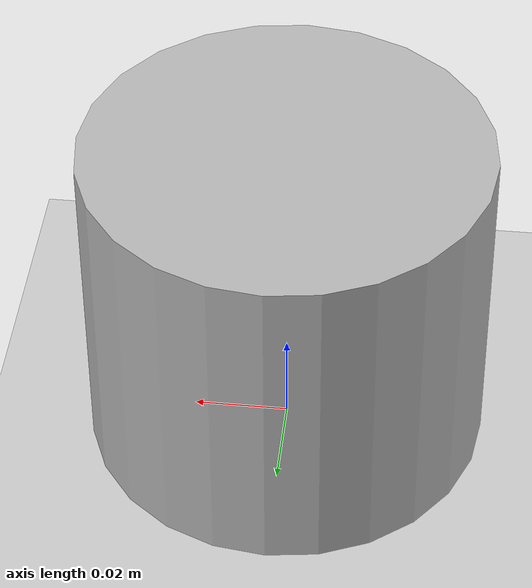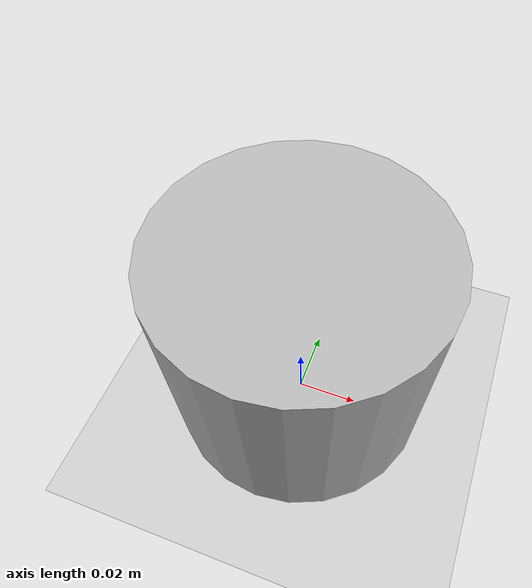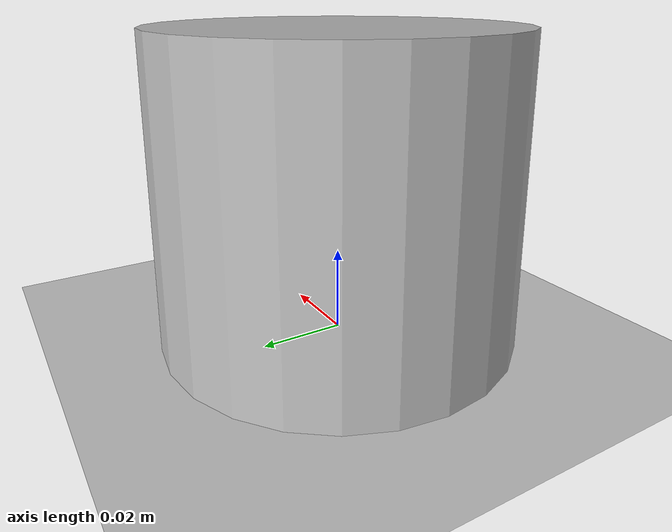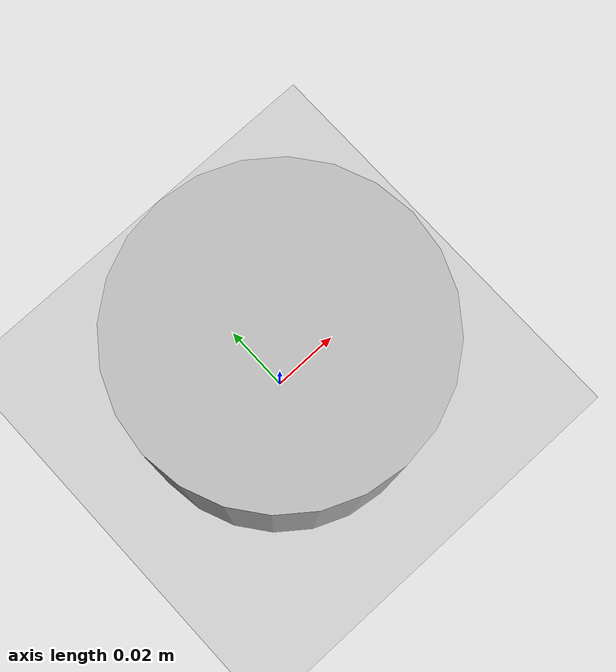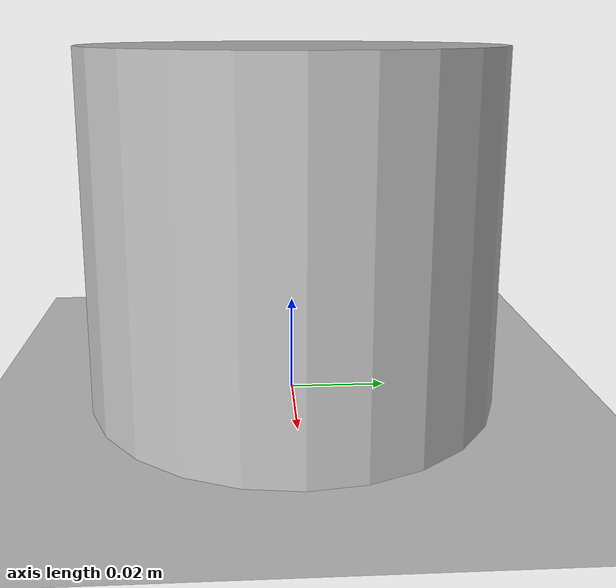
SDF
<!-- Para debuggear el ouster -->
<?xml version="1.0" ?>
<sdf version="1.5">
  <world name="default">
    <!-- A global light source -->
    <include>
      <uri>model://sun</uri>
    </include>

    <!-- A ground plane -->
    <include>
      <uri>model://ground_plane</uri>
    </include>

    <model name="os-1-64">
      <!-- Give the base link a unique name -->
      <link name="os1_lidar">

        <pose>0 0 0.0365 0 0 0</pose>

        <inertial>
          <mass>0.33</mass>
          <inertia>
            <ixx>0.000241148</ixx>
            <iyy>0.000241148</iyy>
            <izz>0.000264</izz>
            <ixy>0</ixy>
            <ixz>0</ixz>
            <iyz>0</iyz>
          </inertia>
        </inertial>

        <collision name="base_collision">
          <geometry>
            <cylinder>
              <radius>0.0425</radius>
              <length>0.073</length>
            </cylinder>
          </geometry>
        </collision>

        <!-- The visual is mostly a copy of the collision -->
        <visual name="base_visual">
          <geometry>

            <cylinder>
              <radius>0.0425</radius>
              <length>0.073</length>
            </cylinder>

          </geometry>
        </visual>
      </link>
    </model>
  </world>
</sdf>
